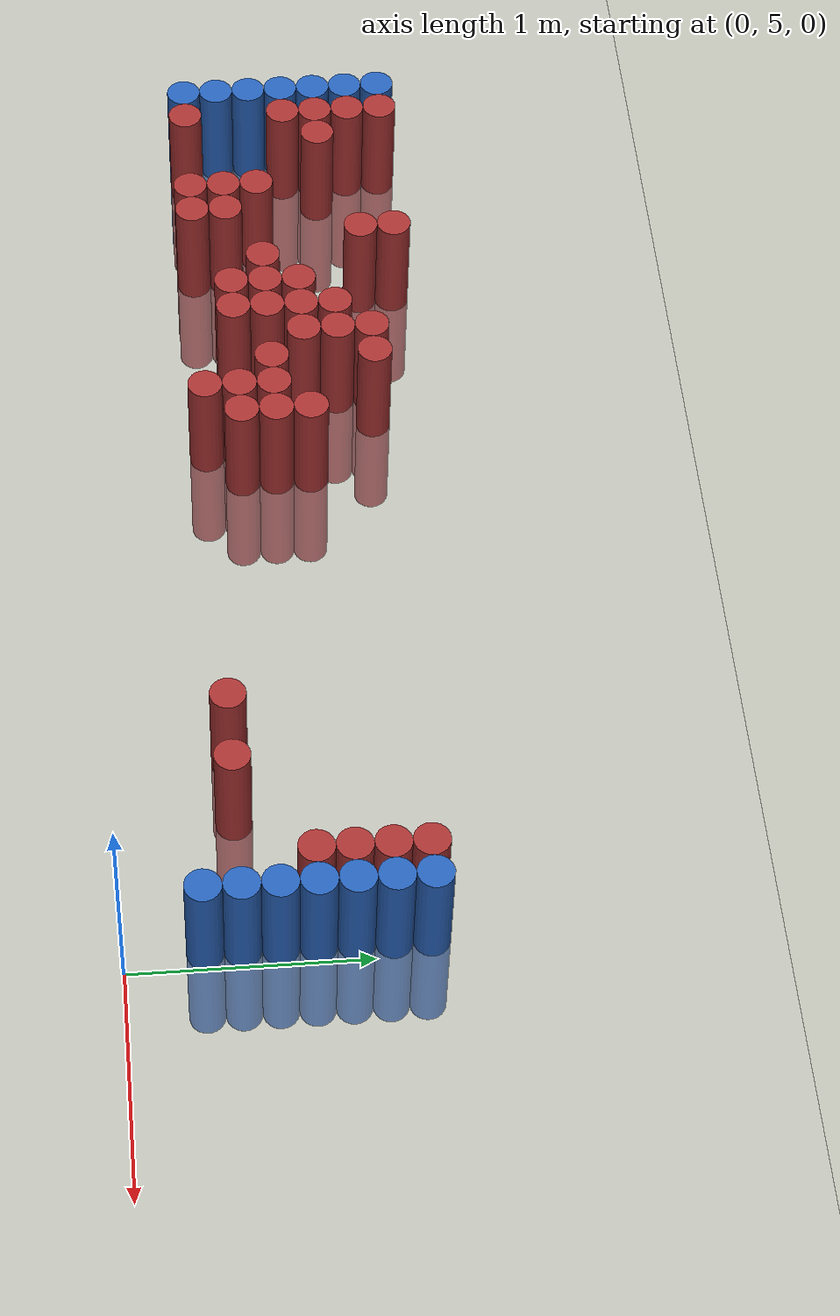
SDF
<sdf version="1.6">
 <world name="default">
  <model name="ground_plane">
   <static>1</static>
   <link name="link">
    <collision name="collision">
     <geometry><plane><normal>0 0 1</normal><size>100 100</size></plane></geometry>
     <surface><friction><ode><mu>100</mu><mu2>50</mu2></ode></friction></surface>
    </collision>
    <visual name="visual">
     <cast_shadows>0</cast_shadows>
     <geometry><plane><normal>0 0 1</normal><size>100 100</size></plane></geometry>
     <material>
      <script><uri>file://media/materials/scripts/gazebo.material</uri><name>Gazebo/Grey</name></script>
     </material>
    </visual>
   </link>
  </model>
  <model name="unit_cylinder_98">
   <static>1</static>
   <pose>-4.425000 5.475000 0.000000 0.000000 0.000000 0.000000</pose>
   <link name="link">
    <inertial>
     <mass>1</mass>
     <inertia><ixx>0.145833</ixx><ixy>0</ixy><ixz>0</ixz><iyy>0.145833</iyy><iyz>0</iyz><izz>0.125</izz></inertia>
    </inertial>
    <collision name="collision">
     <geometry><cylinder><radius>0.075000</radius><length>1</length></cylinder></geometry>
    </collision>
    <visual name="visual">
     <geometry><cylinder><radius>0.075000</radius><length>1</length></cylinder></geometry>
     <material>
      <ambient>0.152000 0.379000 0.720000 1</ambient>
      <diffuse>0.152000 0.379000 0.720000 1</diffuse>
     </material>
     <material>
      <script><name>Gazebo/Grey</name><uri>file://media/materials/scripts/gazebo.material</uri></script>
     </material>
    </visual>
   </link>
  </model>
  <model name="unit_cylinder_99">
   <static>1</static>
   <pose>-4.425000 5.625000 0.000000 0.000000 0.000000 0.000000</pose>
   <link name="link">
    <inertial>
     <mass>1</mass>
     <inertia><ixx>0.145833</ixx><ixy>0</ixy><ixz>0</ixz><iyy>0.145833</iyy><iyz>0</iyz><izz>0.125</izz></inertia>
    </inertial>
    <collision name="collision">
     <geometry><cylinder><radius>0.075000</radius><length>1</length></cylinder></geometry>
    </collision>
    <visual name="visual">
     <geometry><cylinder><radius>0.075000</radius><length>1</length></cylinder></geometry>
     <material>
      <ambient>0.152000 0.379000 0.720000 1</ambient>
      <diffuse>0.152000 0.379000 0.720000 1</diffuse>
     </material>
     <material>
      <script><name>Gazebo/Grey</name><uri>file://media/materials/scripts/gazebo.material</uri></script>
     </material>
    </visual>
   </link>
  </model>
  <model name="unit_cylinder_100">
   <static>1</static>
   <pose>-4.425000 5.775000 0.000000 0.000000 0.000000 0.000000</pose>
   <link name="link">
    <inertial>
     <mass>1</mass>
     <inertia><ixx>0.145833</ixx><ixy>0</ixy><ixz>0</ixz><iyy>0.145833</iyy><iyz>0</iyz><izz>0.125</izz></inertia>
    </inertial>
    <collision name="collision">
     <geometry><cylinder><radius>0.075000</radius><length>1</length></cylinder></geometry>
    </collision>
    <visual name="visual">
     <geometry><cylinder><radius>0.075000</radius><length>1</length></cylinder></geometry>
     <material>
      <ambient>0.152000 0.379000 0.720000 1</ambient>
      <diffuse>0.152000 0.379000 0.720000 1</diffuse>
     </material>
     <material>
      <script><name>Gazebo/Grey</name><uri>file://media/materials/scripts/gazebo.material</uri></script>
     </material>
    </visual>
   </link>
  </model>
  <model name="unit_cylinder_101">
   <static>1</static>
   <pose>-4.425000 5.925000 0.000000 0.000000 0.000000 0.000000</pose>
   <link name="link">
    <inertial>
     <mass>1</mass>
     <inertia><ixx>0.145833</ixx><ixy>0</ixy><ixz>0</ixz><iyy>0.145833</iyy><iyz>0</iyz><izz>0.125</izz></inertia>
    </inertial>
    <collision name="collision">
     <geometry><cylinder><radius>0.075000</radius><length>1</length></cylinder></geometry>
    </collision>
    <visual name="visual">
     <geometry><cylinder><radius>0.075000</radius><length>1</length></cylinder></geometry>
     <material>
      <ambient>0.152000 0.379000 0.720000 1</ambient>
      <diffuse>0.152000 0.379000 0.720000 1</diffuse>
     </material>
     <material>
      <script><name>Gazebo/Grey</name><uri>file://media/materials/scripts/gazebo.material</uri></script>
     </material>
    </visual>
   </link>
  </model>
  <model name="unit_cylinder_102">
   <static>1</static>
   <pose>-4.425000 6.075000 0.000000 0.000000 0.000000 0.000000</pose>
   <link name="link">
    <inertial>
     <mass>1</mass>
     <inertia><ixx>0.145833</ixx><ixy>0</ixy><ixz>0</ixz><iyy>0.145833</iyy><iyz>0</iyz><izz>0.125</izz></inertia>
    </inertial>
    <collision name="collision">
     <geometry><cylinder><radius>0.075000</radius><length>1</length></cylinder></geometry>
    </collision>
    <visual name="visual">
     <geometry><cylinder><radius>0.075000</radius><length>1</length></cylinder></geometry>
     <material>
      <ambient>0.152000 0.379000 0.720000 1</ambient>
      <diffuse>0.152000 0.379000 0.720000 1</diffuse>
     </material>
     <material>
      <script><name>Gazebo/Grey</name><uri>file://media/materials/scripts/gazebo.material</uri></script>
     </material>
    </visual>
   </link>
  </model>
  <model name="unit_cylinder_103">
   <static>1</static>
   <pose>-4.425000 6.225000 0.000000 0.000000 0.000000 0.000000</pose>
   <link name="link">
    <inertial>
     <mass>1</mass>
     <inertia><ixx>0.145833</ixx><ixy>0</ixy><ixz>0</ixz><iyy>0.145833</iyy><iyz>0</iyz><izz>0.125</izz></inertia>
    </inertial>
    <collision name="collision">
     <geometry><cylinder><radius>0.075000</radius><length>1</length></cylinder></geometry>
    </collision>
    <visual name="visual">
     <geometry><cylinder><radius>0.075000</radius><length>1</length></cylinder></geometry>
     <material>
      <ambient>0.152000 0.379000 0.720000 1</ambient>
      <diffuse>0.152000 0.379000 0.720000 1</diffuse>
     </material>
     <material>
      <script><name>Gazebo/Grey</name><uri>file://media/materials/scripts/gazebo.material</uri></script>
     </material>
    </visual>
   </link>
  </model>
  <model name="unit_cylinder_104">
   <static>1</static>
   <pose>-4.425000 6.375000 0.000000 0.000000 0.000000 0.000000</pose>
   <link name="link">
    <inertial>
     <mass>1</mass>
     <inertia><ixx>0.145833</ixx><ixy>0</ixy><ixz>0</ixz><iyy>0.145833</iyy><iyz>0</iyz><izz>0.125</izz></inertia>
    </inertial>
    <collision name="collision">
     <geometry><cylinder><radius>0.075000</radius><length>1</length></cylinder></geometry>
    </collision>
    <visual name="visual">
     <geometry><cylinder><radius>0.075000</radius><length>1</length></cylinder></geometry>
     <material>
      <ambient>0.152000 0.379000 0.720000 1</ambient>
      <diffuse>0.152000 0.379000 0.720000 1</diffuse>
     </material>
     <material>
      <script><name>Gazebo/Grey</name><uri>file://media/materials/scripts/gazebo.material</uri></script>
     </material>
    </visual>
   </link>
  </model>
  <model name="unit_cylinder_127">
   <static>1</static>
   <pose>-4.275000 5.475000 0.000000 0.000000 0.000000 0.000000</pose>
   <link name="link">
    <inertial>
     <mass>1</mass>
     <inertia><ixx>0.145833</ixx><ixy>0</ixy><ixz>0</ixz><iyy>0.145833</iyy><iyz>0</iyz><izz>0.125</izz></inertia>
    </inertial>
    <collision name="collision">
     <geometry><cylinder><radius>0.075000</radius><length>1</length></cylinder></geometry>
    </collision>
    <visual name="visual">
     <geometry><cylinder><radius>0.075000</radius><length>1</length></cylinder></geometry>
     <material>
      <ambient>0.648000 0.192000 0.192000 1</ambient>
      <diffuse>0.648000 0.192000 0.192000 1</diffuse>
     </material>
     <material>
      <script><name>Gazebo/Grey</name><uri>file://media/materials/scripts/gazebo.material</uri></script>
     </material>
    </visual>
   </link>
  </model>
  <model name="unit_cylinder_128">
   <static>1</static>
   <pose>-4.275000 5.925000 0.000000 0.000000 0.000000 0.000000</pose>
   <link name="link">
    <inertial>
     <mass>1</mass>
     <inertia><ixx>0.145833</ixx><ixy>0</ixy><ixz>0</ixz><iyy>0.145833</iyy><iyz>0</iyz><izz>0.125</izz></inertia>
    </inertial>
    <collision name="collision">
     <geometry><cylinder><radius>0.075000</radius><length>1</length></cylinder></geometry>
    </collision>
    <visual name="visual">
     <geometry><cylinder><radius>0.075000</radius><length>1</length></cylinder></geometry>
     <material>
      <ambient>0.648000 0.192000 0.192000 1</ambient>
      <diffuse>0.648000 0.192000 0.192000 1</diffuse>
     </material>
     <material>
      <script><name>Gazebo/Grey</name><uri>file://media/materials/scripts/gazebo.material</uri></script>
     </material>
    </visual>
   </link>
  </model>
  <model name="unit_cylinder_129">
   <static>1</static>
   <pose>-4.275000 6.075000 0.000000 0.000000 0.000000 0.000000</pose>
   <link name="link">
    <inertial>
     <mass>1</mass>
     <inertia><ixx>0.145833</ixx><ixy>0</ixy><ixz>0</ixz><iyy>0.145833</iyy><iyz>0</iyz><izz>0.125</izz></inertia>
    </inertial>
    <collision name="collision">
     <geometry><cylinder><radius>0.075000</radius><length>1</length></cylinder></geometry>
    </collision>
    <visual name="visual">
     <geometry><cylinder><radius>0.075000</radius><length>1</length></cylinder></geometry>
     <material>
      <ambient>0.648000 0.192000 0.192000 1</ambient>
      <diffuse>0.648000 0.192000 0.192000 1</diffuse>
     </material>
     <material>
      <script><name>Gazebo/Grey</name><uri>file://media/materials/scripts/gazebo.material</uri></script>
     </material>
    </visual>
   </link>
  </model>
  <model name="unit_cylinder_130">
   <static>1</static>
   <pose>-4.275000 6.225000 0.000000 0.000000 0.000000 0.000000</pose>
   <link name="link">
    <inertial>
     <mass>1</mass>
     <inertia><ixx>0.145833</ixx><ixy>0</ixy><ixz>0</ixz><iyy>0.145833</iyy><iyz>0</iyz><izz>0.125</izz></inertia>
    </inertial>
    <collision name="collision">
     <geometry><cylinder><radius>0.075000</radius><length>1</length></cylinder></geometry>
    </collision>
    <visual name="visual">
     <geometry><cylinder><radius>0.075000</radius><length>1</length></cylinder></geometry>
     <material>
      <ambient>0.648000 0.192000 0.192000 1</ambient>
      <diffuse>0.648000 0.192000 0.192000 1</diffuse>
     </material>
     <material>
      <script><name>Gazebo/Grey</name><uri>file://media/materials/scripts/gazebo.material</uri></script>
     </material>
    </visual>
   </link>
  </model>
  <model name="unit_cylinder_131">
   <static>1</static>
   <pose>-4.275000 6.375000 0.000000 0.000000 0.000000 0.000000</pose>
   <link name="link">
    <inertial>
     <mass>1</mass>
     <inertia><ixx>0.145833</ixx><ixy>0</ixy><ixz>0</ixz><iyy>0.145833</iyy><iyz>0</iyz><izz>0.125</izz></inertia>
    </inertial>
    <collision name="collision">
     <geometry><cylinder><radius>0.075000</radius><length>1</length></cylinder></geometry>
    </collision>
    <visual name="visual">
     <geometry><cylinder><radius>0.075000</radius><length>1</length></cylinder></geometry>
     <material>
      <ambient>0.648000 0.192000 0.192000 1</ambient>
      <diffuse>0.648000 0.192000 0.192000 1</diffuse>
     </material>
     <material>
      <script><name>Gazebo/Grey</name><uri>file://media/materials/scripts/gazebo.material</uri></script>
     </material>
    </visual>
   </link>
  </model>
  <model name="unit_cylinder_142">
   <static>1</static>
   <pose>-4.125000 6.075000 0.000000 0.000000 0.000000 0.000000</pose>
   <link name="link">
    <inertial>
     <mass>1</mass>
     <inertia><ixx>0.145833</ixx><ixy>0</ixy><ixz>0</ixz><iyy>0.145833</iyy><iyz>0</iyz><izz>0.125</izz></inertia>
    </inertial>
    <collision name="collision">
     <geometry><cylinder><radius>0.075000</radius><length>1</length></cylinder></geometry>
    </collision>
    <visual name="visual">
     <geometry><cylinder><radius>0.075000</radius><length>1</length></cylinder></geometry>
     <material>
      <ambient>0.648000 0.192000 0.192000 1</ambient>
      <diffuse>0.648000 0.192000 0.192000 1</diffuse>
     </material>
     <material>
      <script><name>Gazebo/Grey</name><uri>file://media/materials/scripts/gazebo.material</uri></script>
     </material>
    </visual>
   </link>
  </model>
  <model name="unit_cylinder_146">
   <static>1</static>
   <pose>-3.825000 5.475000 0.000000 0.000000 0.000000 0.000000</pose>
   <link name="link">
    <inertial>
     <mass>1</mass>
     <inertia><ixx>0.145833</ixx><ixy>0</ixy><ixz>0</ixz><iyy>0.145833</iyy><iyz>0</iyz><izz>0.125</izz></inertia>
    </inertial>
    <collision name="collision">
     <geometry><cylinder><radius>0.075000</radius><length>1</length></cylinder></geometry>
    </collision>
    <visual name="visual">
     <geometry><cylinder><radius>0.075000</radius><length>1</length></cylinder></geometry>
     <material>
      <ambient>0.648000 0.192000 0.192000 1</ambient>
      <diffuse>0.648000 0.192000 0.192000 1</diffuse>
     </material>
     <material>
      <script><name>Gazebo/Grey</name><uri>file://media/materials/scripts/gazebo.material</uri></script>
     </material>
    </visual>
   </link>
  </model>
  <model name="unit_cylinder_147">
   <static>1</static>
   <pose>-3.825000 5.625000 0.000000 0.000000 0.000000 0.000000</pose>
   <link name="link">
    <inertial>
     <mass>1</mass>
     <inertia><ixx>0.145833</ixx><ixy>0</ixy><ixz>0</ixz><iyy>0.145833</iyy><iyz>0</iyz><izz>0.125</izz></inertia>
    </inertial>
    <collision name="collision">
     <geometry><cylinder><radius>0.075000</radius><length>1</length></cylinder></geometry>
    </collision>
    <visual name="visual">
     <geometry><cylinder><radius>0.075000</radius><length>1</length></cylinder></geometry>
     <material>
      <ambient>0.648000 0.192000 0.192000 1</ambient>
      <diffuse>0.648000 0.192000 0.192000 1</diffuse>
     </material>
     <material>
      <script><name>Gazebo/Grey</name><uri>file://media/materials/scripts/gazebo.material</uri></script>
     </material>
    </visual>
   </link>
  </model>
  <model name="unit_cylinder_148">
   <static>1</static>
   <pose>-3.825000 5.775000 0.000000 0.000000 0.000000 0.000000</pose>
   <link name="link">
    <inertial>
     <mass>1</mass>
     <inertia><ixx>0.145833</ixx><ixy>0</ixy><ixz>0</ixz><iyy>0.145833</iyy><iyz>0</iyz><izz>0.125</izz></inertia>
    </inertial>
    <collision name="collision">
     <geometry><cylinder><radius>0.075000</radius><length>1</length></cylinder></geometry>
    </collision>
    <visual name="visual">
     <geometry><cylinder><radius>0.075000</radius><length>1</length></cylinder></geometry>
     <material>
      <ambient>0.648000 0.192000 0.192000 1</ambient>
      <diffuse>0.648000 0.192000 0.192000 1</diffuse>
     </material>
     <material>
      <script><name>Gazebo/Grey</name><uri>file://media/materials/scripts/gazebo.material</uri></script>
     </material>
    </visual>
   </link>
  </model>
  <model name="unit_cylinder_150">
   <static>1</static>
   <pose>-3.675000 5.475000 0.000000 0.000000 0.000000 0.000000</pose>
   <link name="link">
    <inertial>
     <mass>1</mass>
     <inertia><ixx>0.145833</ixx><ixy>0</ixy><ixz>0</ixz><iyy>0.145833</iyy><iyz>0</iyz><izz>0.125</izz></inertia>
    </inertial>
    <collision name="collision">
     <geometry><cylinder><radius>0.075000</radius><length>1</length></cylinder></geometry>
    </collision>
    <visual name="visual">
     <geometry><cylinder><radius>0.075000</radius><length>1</length></cylinder></geometry>
     <material>
      <ambient>0.648000 0.192000 0.192000 1</ambient>
      <diffuse>0.648000 0.192000 0.192000 1</diffuse>
     </material>
     <material>
      <script><name>Gazebo/Grey</name><uri>file://media/materials/scripts/gazebo.material</uri></script>
     </material>
    </visual>
   </link>
  </model>
  <model name="unit_cylinder_151">
   <static>1</static>
   <pose>-3.675000 5.625000 0.000000 0.000000 0.000000 0.000000</pose>
   <link name="link">
    <inertial>
     <mass>1</mass>
     <inertia><ixx>0.145833</ixx><ixy>0</ixy><ixz>0</ixz><iyy>0.145833</iyy><iyz>0</iyz><izz>0.125</izz></inertia>
    </inertial>
    <collision name="collision">
     <geometry><cylinder><radius>0.075000</radius><length>1</length></cylinder></geometry>
    </collision>
    <visual name="visual">
     <geometry><cylinder><radius>0.075000</radius><length>1</length></cylinder></geometry>
     <material>
      <ambient>0.648000 0.192000 0.192000 1</ambient>
      <diffuse>0.648000 0.192000 0.192000 1</diffuse>
     </material>
     <material>
      <script><name>Gazebo/Grey</name><uri>file://media/materials/scripts/gazebo.material</uri></script>
     </material>
    </visual>
   </link>
  </model>
  <model name="unit_cylinder_157">
   <static>1</static>
   <pose>-3.525000 6.225000 0.000000 0.000000 0.000000 0.000000</pose>
   <link name="link">
    <inertial>
     <mass>1</mass>
     <inertia><ixx>0.145833</ixx><ixy>0</ixy><ixz>0</ixz><iyy>0.145833</iyy><iyz>0</iyz><izz>0.125</izz></inertia>
    </inertial>
    <collision name="collision">
     <geometry><cylinder><radius>0.075000</radius><length>1</length></cylinder></geometry>
    </collision>
    <visual name="visual">
     <geometry><cylinder><radius>0.075000</radius><length>1</length></cylinder></geometry>
     <material>
      <ambient>0.648000 0.192000 0.192000 1</ambient>
      <diffuse>0.648000 0.192000 0.192000 1</diffuse>
     </material>
     <material>
      <script><name>Gazebo/Grey</name><uri>file://media/materials/scripts/gazebo.material</uri></script>
     </material>
    </visual>
   </link>
  </model>
  <model name="unit_cylinder_158">
   <static>1</static>
   <pose>-3.525000 6.375000 0.000000 0.000000 0.000000 0.000000</pose>
   <link name="link">
    <inertial>
     <mass>1</mass>
     <inertia><ixx>0.145833</ixx><ixy>0</ixy><ixz>0</ixz><iyy>0.145833</iyy><iyz>0</iyz><izz>0.125</izz></inertia>
    </inertial>
    <collision name="collision">
     <geometry><cylinder><radius>0.075000</radius><length>1</length></cylinder></geometry>
    </collision>
    <visual name="visual">
     <geometry><cylinder><radius>0.075000</radius><length>1</length></cylinder></geometry>
     <material>
      <ambient>0.648000 0.192000 0.192000 1</ambient>
      <diffuse>0.648000 0.192000 0.192000 1</diffuse>
     </material>
     <material>
      <script><name>Gazebo/Grey</name><uri>file://media/materials/scripts/gazebo.material</uri></script>
     </material>
    </visual>
   </link>
  </model>
  <model name="unit_cylinder_166">
   <static>1</static>
   <pose>-3.375000 5.775000 0.000000 0.000000 0.000000 0.000000</pose>
   <link name="link">
    <inertial>
     <mass>1</mass>
     <inertia><ixx>0.145833</ixx><ixy>0</ixy><ixz>0</ixz><iyy>0.145833</iyy><iyz>0</iyz><izz>0.125</izz></inertia>
    </inertial>
    <collision name="collision">
     <geometry><cylinder><radius>0.075000</radius><length>1</length></cylinder></geometry>
    </collision>
    <visual name="visual">
     <geometry><cylinder><radius>0.075000</radius><length>1</length></cylinder></geometry>
     <material>
      <ambient>0.648000 0.192000 0.192000 1</ambient>
      <diffuse>0.648000 0.192000 0.192000 1</diffuse>
     </material>
     <material>
      <script><name>Gazebo/Grey</name><uri>file://media/materials/scripts/gazebo.material</uri></script>
     </material>
    </visual>
   </link>
  </model>
  <model name="unit_cylinder_171">
   <static>1</static>
   <pose>-3.225000 5.625000 0.000000 0.000000 0.000000 0.000000</pose>
   <link name="link">
    <inertial>
     <mass>1</mass>
     <inertia><ixx>0.145833</ixx><ixy>0</ixy><ixz>0</ixz><iyy>0.145833</iyy><iyz>0</iyz><izz>0.125</izz></inertia>
    </inertial>
    <collision name="collision">
     <geometry><cylinder><radius>0.075000</radius><length>1</length></cylinder></geometry>
    </collision>
    <visual name="visual">
     <geometry><cylinder><radius>0.075000</radius><length>1</length></cylinder></geometry>
     <material>
      <ambient>0.648000 0.192000 0.192000 1</ambient>
      <diffuse>0.648000 0.192000 0.192000 1</diffuse>
     </material>
     <material>
      <script><name>Gazebo/Grey</name><uri>file://media/materials/scripts/gazebo.material</uri></script>
     </material>
    </visual>
   </link>
  </model>
  <model name="unit_cylinder_172">
   <static>1</static>
   <pose>-3.225000 5.775000 0.000000 0.000000 0.000000 0.000000</pose>
   <link name="link">
    <inertial>
     <mass>1</mass>
     <inertia><ixx>0.145833</ixx><ixy>0</ixy><ixz>0</ixz><iyy>0.145833</iyy><iyz>0</iyz><izz>0.125</izz></inertia>
    </inertial>
    <collision name="collision">
     <geometry><cylinder><radius>0.075000</radius><length>1</length></cylinder></geometry>
    </collision>
    <visual name="visual">
     <geometry><cylinder><radius>0.075000</radius><length>1</length></cylinder></geometry>
     <material>
      <ambient>0.648000 0.192000 0.192000 1</ambient>
      <diffuse>0.648000 0.192000 0.192000 1</diffuse>
     </material>
     <material>
      <script><name>Gazebo/Grey</name><uri>file://media/materials/scripts/gazebo.material</uri></script>
     </material>
    </visual>
   </link>
  </model>
  <model name="unit_cylinder_173">
   <static>1</static>
   <pose>-3.225000 5.925000 0.000000 0.000000 0.000000 0.000000</pose>
   <link name="link">
    <inertial>
     <mass>1</mass>
     <inertia><ixx>0.145833</ixx><ixy>0</ixy><ixz>0</ixz><iyy>0.145833</iyy><iyz>0</iyz><izz>0.125</izz></inertia>
    </inertial>
    <collision name="collision">
     <geometry><cylinder><radius>0.075000</radius><length>1</length></cylinder></geometry>
    </collision>
    <visual name="visual">
     <geometry><cylinder><radius>0.075000</radius><length>1</length></cylinder></geometry>
     <material>
      <ambient>0.648000 0.192000 0.192000 1</ambient>
      <diffuse>0.648000 0.192000 0.192000 1</diffuse>
     </material>
     <material>
      <script><name>Gazebo/Grey</name><uri>file://media/materials/scripts/gazebo.material</uri></script>
     </material>
    </visual>
   </link>
  </model>
  <model name="unit_cylinder_175">
   <static>1</static>
   <pose>-3.075000 5.625000 0.000000 0.000000 0.000000 0.000000</pose>
   <link name="link">
    <inertial>
     <mass>1</mass>
     <inertia><ixx>0.145833</ixx><ixy>0</ixy><ixz>0</ixz><iyy>0.145833</iyy><iyz>0</iyz><izz>0.125</izz></inertia>
    </inertial>
    <collision name="collision">
     <geometry><cylinder><radius>0.075000</radius><length>1</length></cylinder></geometry>
    </collision>
    <visual name="visual">
     <geometry><cylinder><radius>0.075000</radius><length>1</length></cylinder></geometry>
     <material>
      <ambient>0.648000 0.192000 0.192000 1</ambient>
      <diffuse>0.648000 0.192000 0.192000 1</diffuse>
     </material>
     <material>
      <script><name>Gazebo/Grey</name><uri>file://media/materials/scripts/gazebo.material</uri></script>
     </material>
    </visual>
   </link>
  </model>
  <model name="unit_cylinder_176">
   <static>1</static>
   <pose>-3.075000 5.775000 0.000000 0.000000 0.000000 0.000000</pose>
   <link name="link">
    <inertial>
     <mass>1</mass>
     <inertia><ixx>0.145833</ixx><ixy>0</ixy><ixz>0</ixz><iyy>0.145833</iyy><iyz>0</iyz><izz>0.125</izz></inertia>
    </inertial>
    <collision name="collision">
     <geometry><cylinder><radius>0.075000</radius><length>1</length></cylinder></geometry>
    </collision>
    <visual name="visual">
     <geometry><cylinder><radius>0.075000</radius><length>1</length></cylinder></geometry>
     <material>
      <ambient>0.648000 0.192000 0.192000 1</ambient>
      <diffuse>0.648000 0.192000 0.192000 1</diffuse>
     </material>
     <material>
      <script><name>Gazebo/Grey</name><uri>file://media/materials/scripts/gazebo.material</uri></script>
     </material>
    </visual>
   </link>
  </model>
  <model name="unit_cylinder_177">
   <static>1</static>
   <pose>-3.075000 5.925000 0.000000 0.000000 0.000000 0.000000</pose>
   <link name="link">
    <inertial>
     <mass>1</mass>
     <inertia><ixx>0.145833</ixx><ixy>0</ixy><ixz>0</ixz><iyy>0.145833</iyy><iyz>0</iyz><izz>0.125</izz></inertia>
    </inertial>
    <collision name="collision">
     <geometry><cylinder><radius>0.075000</radius><length>1</length></cylinder></geometry>
    </collision>
    <visual name="visual">
     <geometry><cylinder><radius>0.075000</radius><length>1</length></cylinder></geometry>
     <material>
      <ambient>0.648000 0.192000 0.192000 1</ambient>
      <diffuse>0.648000 0.192000 0.192000 1</diffuse>
     </material>
     <material>
      <script><name>Gazebo/Grey</name><uri>file://media/materials/scripts/gazebo.material</uri></script>
     </material>
    </visual>
   </link>
  </model>
  <model name="unit_cylinder_178">
   <static>1</static>
   <pose>-3.075000 6.075000 0.000000 0.000000 0.000000 0.000000</pose>
   <link name="link">
    <inertial>
     <mass>1</mass>
     <inertia><ixx>0.145833</ixx><ixy>0</ixy><ixz>0</ixz><iyy>0.145833</iyy><iyz>0</iyz><izz>0.125</izz></inertia>
    </inertial>
    <collision name="collision">
     <geometry><cylinder><radius>0.075000</radius><length>1</length></cylinder></geometry>
    </collision>
    <visual name="visual">
     <geometry><cylinder><radius>0.075000</radius><length>1</length></cylinder></geometry>
     <material>
      <ambient>0.648000 0.192000 0.192000 1</ambient>
      <diffuse>0.648000 0.192000 0.192000 1</diffuse>
     </material>
     <material>
      <script><name>Gazebo/Grey</name><uri>file://media/materials/scripts/gazebo.material</uri></script>
     </material>
    </visual>
   </link>
  </model>
  <model name="unit_cylinder_182">
   <static>1</static>
   <pose>-2.925000 5.925000 0.000000 0.000000 0.000000 0.000000</pose>
   <link name="link">
    <inertial>
     <mass>1</mass>
     <inertia><ixx>0.145833</ixx><ixy>0</ixy><ixz>0</ixz><iyy>0.145833</iyy><iyz>0</iyz><izz>0.125</izz></inertia>
    </inertial>
    <collision name="collision">
     <geometry><cylinder><radius>0.075000</radius><length>1</length></cylinder></geometry>
    </collision>
    <visual name="visual">
     <geometry><cylinder><radius>0.075000</radius><length>1</length></cylinder></geometry>
     <material>
      <ambient>0.648000 0.192000 0.192000 1</ambient>
      <diffuse>0.648000 0.192000 0.192000 1</diffuse>
     </material>
     <material>
      <script><name>Gazebo/Grey</name><uri>file://media/materials/scripts/gazebo.material</uri></script>
     </material>
    </visual>
   </link>
  </model>
  <model name="unit_cylinder_183">
   <static>1</static>
   <pose>-2.925000 6.075000 0.000000 0.000000 0.000000 0.000000</pose>
   <link name="link">
    <inertial>
     <mass>1</mass>
     <inertia><ixx>0.145833</ixx><ixy>0</ixy><ixz>0</ixz><iyy>0.145833</iyy><iyz>0</iyz><izz>0.125</izz></inertia>
    </inertial>
    <collision name="collision">
     <geometry><cylinder><radius>0.075000</radius><length>1</length></cylinder></geometry>
    </collision>
    <visual name="visual">
     <geometry><cylinder><radius>0.075000</radius><length>1</length></cylinder></geometry>
     <material>
      <ambient>0.648000 0.192000 0.192000 1</ambient>
      <diffuse>0.648000 0.192000 0.192000 1</diffuse>
     </material>
     <material>
      <script><name>Gazebo/Grey</name><uri>file://media/materials/scripts/gazebo.material</uri></script>
     </material>
    </visual>
   </link>
  </model>
  <model name="unit_cylinder_184">
   <static>1</static>
   <pose>-2.925000 6.225000 0.000000 0.000000 0.000000 0.000000</pose>
   <link name="link">
    <inertial>
     <mass>1</mass>
     <inertia><ixx>0.145833</ixx><ixy>0</ixy><ixz>0</ixz><iyy>0.145833</iyy><iyz>0</iyz><izz>0.125</izz></inertia>
    </inertial>
    <collision name="collision">
     <geometry><cylinder><radius>0.075000</radius><length>1</length></cylinder></geometry>
    </collision>
    <visual name="visual">
     <geometry><cylinder><radius>0.075000</radius><length>1</length></cylinder></geometry>
     <material>
      <ambient>0.648000 0.192000 0.192000 1</ambient>
      <diffuse>0.648000 0.192000 0.192000 1</diffuse>
     </material>
     <material>
      <script><name>Gazebo/Grey</name><uri>file://media/materials/scripts/gazebo.material</uri></script>
     </material>
    </visual>
   </link>
  </model>
  <model name="unit_cylinder_185">
   <static>1</static>
   <pose>-2.775000 5.775000 0.000000 0.000000 0.000000 0.000000</pose>
   <link name="link">
    <inertial>
     <mass>1</mass>
     <inertia><ixx>0.145833</ixx><ixy>0</ixy><ixz>0</ixz><iyy>0.145833</iyy><iyz>0</iyz><izz>0.125</izz></inertia>
    </inertial>
    <collision name="collision">
     <geometry><cylinder><radius>0.075000</radius><length>1</length></cylinder></geometry>
    </collision>
    <visual name="visual">
     <geometry><cylinder><radius>0.075000</radius><length>1</length></cylinder></geometry>
     <material>
      <ambient>0.648000 0.192000 0.192000 1</ambient>
      <diffuse>0.648000 0.192000 0.192000 1</diffuse>
     </material>
     <material>
      <script><name>Gazebo/Grey</name><uri>file://media/materials/scripts/gazebo.material</uri></script>
     </material>
    </visual>
   </link>
  </model>
  <model name="unit_cylinder_186">
   <static>1</static>
   <pose>-2.775000 6.225000 0.000000 0.000000 0.000000 0.000000</pose>
   <link name="link">
    <inertial>
     <mass>1</mass>
     <inertia><ixx>0.145833</ixx><ixy>0</ixy><ixz>0</ixz><iyy>0.145833</iyy><iyz>0</iyz><izz>0.125</izz></inertia>
    </inertial>
    <collision name="collision">
     <geometry><cylinder><radius>0.075000</radius><length>1</length></cylinder></geometry>
    </collision>
    <visual name="visual">
     <geometry><cylinder><radius>0.075000</radius><length>1</length></cylinder></geometry>
     <material>
      <ambient>0.648000 0.192000 0.192000 1</ambient>
      <diffuse>0.648000 0.192000 0.192000 1</diffuse>
     </material>
     <material>
      <script><name>Gazebo/Grey</name><uri>file://media/materials/scripts/gazebo.material</uri></script>
     </material>
    </visual>
   </link>
  </model>
  <model name="unit_cylinder_188">
   <static>1</static>
   <pose>-2.625000 5.475000 0.000000 0.000000 0.000000 0.000000</pose>
   <link name="link">
    <inertial>
     <mass>1</mass>
     <inertia><ixx>0.145833</ixx><ixy>0</ixy><ixz>0</ixz><iyy>0.145833</iyy><iyz>0</iyz><izz>0.125</izz></inertia>
    </inertial>
    <collision name="collision">
     <geometry><cylinder><radius>0.075000</radius><length>1</length></cylinder></geometry>
    </collision>
    <visual name="visual">
     <geometry><cylinder><radius>0.075000</radius><length>1</length></cylinder></geometry>
     <material>
      <ambient>0.648000 0.192000 0.192000 1</ambient>
      <diffuse>0.648000 0.192000 0.192000 1</diffuse>
     </material>
     <material>
      <script><name>Gazebo/Grey</name><uri>file://media/materials/scripts/gazebo.material</uri></script>
     </material>
    </visual>
   </link>
  </model>
  <model name="unit_cylinder_189">
   <static>1</static>
   <pose>-2.625000 5.625000 0.000000 0.000000 0.000000 0.000000</pose>
   <link name="link">
    <inertial>
     <mass>1</mass>
     <inertia><ixx>0.145833</ixx><ixy>0</ixy><ixz>0</ixz><iyy>0.145833</iyy><iyz>0</iyz><izz>0.125</izz></inertia>
    </inertial>
    <collision name="collision">
     <geometry><cylinder><radius>0.075000</radius><length>1</length></cylinder></geometry>
    </collision>
    <visual name="visual">
     <geometry><cylinder><radius>0.075000</radius><length>1</length></cylinder></geometry>
     <material>
      <ambient>0.648000 0.192000 0.192000 1</ambient>
      <diffuse>0.648000 0.192000 0.192000 1</diffuse>
     </material>
     <material>
      <script><name>Gazebo/Grey</name><uri>file://media/materials/scripts/gazebo.material</uri></script>
     </material>
    </visual>
   </link>
  </model>
  <model name="unit_cylinder_190">
   <static>1</static>
   <pose>-2.625000 5.775000 0.000000 0.000000 0.000000 0.000000</pose>
   <link name="link">
    <inertial>
     <mass>1</mass>
     <inertia><ixx>0.145833</ixx><ixy>0</ixy><ixz>0</ixz><iyy>0.145833</iyy><iyz>0</iyz><izz>0.125</izz></inertia>
    </inertial>
    <collision name="collision">
     <geometry><cylinder><radius>0.075000</radius><length>1</length></cylinder></geometry>
    </collision>
    <visual name="visual">
     <geometry><cylinder><radius>0.075000</radius><length>1</length></cylinder></geometry>
     <material>
      <ambient>0.648000 0.192000 0.192000 1</ambient>
      <diffuse>0.648000 0.192000 0.192000 1</diffuse>
     </material>
     <material>
      <script><name>Gazebo/Grey</name><uri>file://media/materials/scripts/gazebo.material</uri></script>
     </material>
    </visual>
   </link>
  </model>
  <model name="unit_cylinder_195">
   <static>1</static>
   <pose>-2.475000 5.625000 0.000000 0.000000 0.000000 0.000000</pose>
   <link name="link">
    <inertial>
     <mass>1</mass>
     <inertia><ixx>0.145833</ixx><ixy>0</ixy><ixz>0</ixz><iyy>0.145833</iyy><iyz>0</iyz><izz>0.125</izz></inertia>
    </inertial>
    <collision name="collision">
     <geometry><cylinder><radius>0.075000</radius><length>1</length></cylinder></geometry>
    </collision>
    <visual name="visual">
     <geometry><cylinder><radius>0.075000</radius><length>1</length></cylinder></geometry>
     <material>
      <ambient>0.648000 0.192000 0.192000 1</ambient>
      <diffuse>0.648000 0.192000 0.192000 1</diffuse>
     </material>
     <material>
      <script><name>Gazebo/Grey</name><uri>file://media/materials/scripts/gazebo.material</uri></script>
     </material>
    </visual>
   </link>
  </model>
  <model name="unit_cylinder_196">
   <static>1</static>
   <pose>-2.475000 5.775000 0.000000 0.000000 0.000000 0.000000</pose>
   <link name="link">
    <inertial>
     <mass>1</mass>
     <inertia><ixx>0.145833</ixx><ixy>0</ixy><ixz>0</ixz><iyy>0.145833</iyy><iyz>0</iyz><izz>0.125</izz></inertia>
    </inertial>
    <collision name="collision">
     <geometry><cylinder><radius>0.075000</radius><length>1</length></cylinder></geometry>
    </collision>
    <visual name="visual">
     <geometry><cylinder><radius>0.075000</radius><length>1</length></cylinder></geometry>
     <material>
      <ambient>0.648000 0.192000 0.192000 1</ambient>
      <diffuse>0.648000 0.192000 0.192000 1</diffuse>
     </material>
     <material>
      <script><name>Gazebo/Grey</name><uri>file://media/materials/scripts/gazebo.material</uri></script>
     </material>
    </visual>
   </link>
  </model>
  <model name="unit_cylinder_197">
   <static>1</static>
   <pose>-2.475000 5.925000 0.000000 0.000000 0.000000 0.000000</pose>
   <link name="link">
    <inertial>
     <mass>1</mass>
     <inertia><ixx>0.145833</ixx><ixy>0</ixy><ixz>0</ixz><iyy>0.145833</iyy><iyz>0</iyz><izz>0.125</izz></inertia>
    </inertial>
    <collision name="collision">
     <geometry><cylinder><radius>0.075000</radius><length>1</length></cylinder></geometry>
    </collision>
    <visual name="visual">
     <geometry><cylinder><radius>0.075000</radius><length>1</length></cylinder></geometry>
     <material>
      <ambient>0.648000 0.192000 0.192000 1</ambient>
      <diffuse>0.648000 0.192000 0.192000 1</diffuse>
     </material>
     <material>
      <script><name>Gazebo/Grey</name><uri>file://media/materials/scripts/gazebo.material</uri></script>
     </material>
    </visual>
   </link>
  </model>
  <model name="unit_cylinder_218">
   <static>1</static>
   <pose>-0.975000 5.475000 0.000000 0.000000 0.000000 0.000000</pose>
   <link name="link">
    <inertial>
     <mass>1</mass>
     <inertia><ixx>0.145833</ixx><ixy>0</ixy><ixz>0</ixz><iyy>0.145833</iyy><iyz>0</iyz><izz>0.125</izz></inertia>
    </inertial>
    <collision name="collision">
     <geometry><cylinder><radius>0.075000</radius><length>1</length></cylinder></geometry>
    </collision>
    <visual name="visual">
     <geometry><cylinder><radius>0.075000</radius><length>1</length></cylinder></geometry>
     <material>
      <ambient>0.648000 0.192000 0.192000 1</ambient>
      <diffuse>0.648000 0.192000 0.192000 1</diffuse>
     </material>
     <material>
      <script><name>Gazebo/Grey</name><uri>file://media/materials/scripts/gazebo.material</uri></script>
     </material>
    </visual>
   </link>
  </model>
  <model name="unit_cylinder_233">
   <static>1</static>
   <pose>-0.675000 5.475000 0.000000 0.000000 0.000000 0.000000</pose>
   <link name="link">
    <inertial>
     <mass>1</mass>
     <inertia><ixx>0.145833</ixx><ixy>0</ixy><ixz>0</ixz><iyy>0.145833</iyy><iyz>0</iyz><izz>0.125</izz></inertia>
    </inertial>
    <collision name="collision">
     <geometry><cylinder><radius>0.075000</radius><length>1</length></cylinder></geometry>
    </collision>
    <visual name="visual">
     <geometry><cylinder><radius>0.075000</radius><length>1</length></cylinder></geometry>
     <material>
      <ambient>0.648000 0.192000 0.192000 1</ambient>
      <diffuse>0.648000 0.192000 0.192000 1</diffuse>
     </material>
     <material>
      <script><name>Gazebo/Grey</name><uri>file://media/materials/scripts/gazebo.material</uri></script>
     </material>
    </visual>
   </link>
  </model>
  <model name="unit_cylinder_260">
   <static>1</static>
   <pose>-0.225000 5.775000 0.000000 0.000000 0.000000 0.000000</pose>
   <link name="link">
    <inertial>
     <mass>1</mass>
     <inertia><ixx>0.145833</ixx><ixy>0</ixy><ixz>0</ixz><iyy>0.145833</iyy><iyz>0</iyz><izz>0.125</izz></inertia>
    </inertial>
    <collision name="collision">
     <geometry><cylinder><radius>0.075000</radius><length>1</length></cylinder></geometry>
    </collision>
    <visual name="visual">
     <geometry><cylinder><radius>0.075000</radius><length>1</length></cylinder></geometry>
     <material>
      <ambient>0.648000 0.192000 0.192000 1</ambient>
      <diffuse>0.648000 0.192000 0.192000 1</diffuse>
     </material>
     <material>
      <script><name>Gazebo/Grey</name><uri>file://media/materials/scripts/gazebo.material</uri></script>
     </material>
    </visual>
   </link>
  </model>
  <model name="unit_cylinder_261">
   <static>1</static>
   <pose>-0.225000 5.925000 0.000000 0.000000 0.000000 0.000000</pose>
   <link name="link">
    <inertial>
     <mass>1</mass>
     <inertia><ixx>0.145833</ixx><ixy>0</ixy><ixz>0</ixz><iyy>0.145833</iyy><iyz>0</iyz><izz>0.125</izz></inertia>
    </inertial>
    <collision name="collision">
     <geometry><cylinder><radius>0.075000</radius><length>1</length></cylinder></geometry>
    </collision>
    <visual name="visual">
     <geometry><cylinder><radius>0.075000</radius><length>1</length></cylinder></geometry>
     <material>
      <ambient>0.648000 0.192000 0.192000 1</ambient>
      <diffuse>0.648000 0.192000 0.192000 1</diffuse>
     </material>
     <material>
      <script><name>Gazebo/Grey</name><uri>file://media/materials/scripts/gazebo.material</uri></script>
     </material>
    </visual>
   </link>
  </model>
  <model name="unit_cylinder_262">
   <static>1</static>
   <pose>-0.225000 6.075000 0.000000 0.000000 0.000000 0.000000</pose>
   <link name="link">
    <inertial>
     <mass>1</mass>
     <inertia><ixx>0.145833</ixx><ixy>0</ixy><ixz>0</ixz><iyy>0.145833</iyy><iyz>0</iyz><izz>0.125</izz></inertia>
    </inertial>
    <collision name="collision">
     <geometry><cylinder><radius>0.075000</radius><length>1</length></cylinder></geometry>
    </collision>
    <visual name="visual">
     <geometry><cylinder><radius>0.075000</radius><length>1</length></cylinder></geometry>
     <material>
      <ambient>0.648000 0.192000 0.192000 1</ambient>
      <diffuse>0.648000 0.192000 0.192000 1</diffuse>
     </material>
     <material>
      <script><name>Gazebo/Grey</name><uri>file://media/materials/scripts/gazebo.material</uri></script>
     </material>
    </visual>
   </link>
  </model>
  <model name="unit_cylinder_263">
   <static>1</static>
   <pose>-0.225000 6.225000 0.000000 0.000000 0.000000 0.000000</pose>
   <link name="link">
    <inertial>
     <mass>1</mass>
     <inertia><ixx>0.145833</ixx><ixy>0</ixy><ixz>0</ixz><iyy>0.145833</iyy><iyz>0</iyz><izz>0.125</izz></inertia>
    </inertial>
    <collision name="collision">
     <geometry><cylinder><radius>0.075000</radius><length>1</length></cylinder></geometry>
    </collision>
    <visual name="visual">
     <geometry><cylinder><radius>0.075000</radius><length>1</length></cylinder></geometry>
     <material>
      <ambient>0.648000 0.192000 0.192000 1</ambient>
      <diffuse>0.648000 0.192000 0.192000 1</diffuse>
     </material>
     <material>
      <script><name>Gazebo/Grey</name><uri>file://media/materials/scripts/gazebo.material</uri></script>
     </material>
    </visual>
   </link>
  </model>
  <model name="unit_cylinder_281">
   <static>1</static>
   <pose>-0.075000 5.325000 0.000000 0.000000 0.000000 0.000000</pose>
   <link name="link">
    <inertial>
     <mass>1</mass>
     <inertia><ixx>0.145833</ixx><ixy>0</ixy><ixz>0</ixz><iyy>0.145833</iyy><iyz>0</iyz><izz>0.125</izz></inertia>
    </inertial>
    <collision name="collision">
     <geometry><cylinder><radius>0.075000</radius><length>1</length></cylinder></geometry>
    </collision>
    <visual name="visual">
     <geometry><cylinder><radius>0.075000</radius><length>1</length></cylinder></geometry>
     <material>
      <ambient>0.152000 0.379000 0.720000 1</ambient>
      <diffuse>0.152000 0.379000 0.720000 1</diffuse>
     </material>
     <material>
      <script><name>Gazebo/Grey</name><uri>file://media/materials/scripts/gazebo.material</uri></script>
     </material>
    </visual>
   </link>
  </model>
  <model name="unit_cylinder_282">
   <static>1</static>
   <pose>-0.075000 5.475000 0.000000 0.000000 0.000000 0.000000</pose>
   <link name="link">
    <inertial>
     <mass>1</mass>
     <inertia><ixx>0.145833</ixx><ixy>0</ixy><ixz>0</ixz><iyy>0.145833</iyy><iyz>0</iyz><izz>0.125</izz></inertia>
    </inertial>
    <collision name="collision">
     <geometry><cylinder><radius>0.075000</radius><length>1</length></cylinder></geometry>
    </collision>
    <visual name="visual">
     <geometry><cylinder><radius>0.075000</radius><length>1</length></cylinder></geometry>
     <material>
      <ambient>0.152000 0.379000 0.720000 1</ambient>
      <diffuse>0.152000 0.379000 0.720000 1</diffuse>
     </material>
     <material>
      <script><name>Gazebo/Grey</name><uri>file://media/materials/scripts/gazebo.material</uri></script>
     </material>
    </visual>
   </link>
  </model>
  <model name="unit_cylinder_283">
   <static>1</static>
   <pose>-0.075000 5.625000 0.000000 0.000000 0.000000 0.000000</pose>
   <link name="link">
    <inertial>
     <mass>1</mass>
     <inertia><ixx>0.145833</ixx><ixy>0</ixy><ixz>0</ixz><iyy>0.145833</iyy><iyz>0</iyz><izz>0.125</izz></inertia>
    </inertial>
    <collision name="collision">
     <geometry><cylinder><radius>0.075000</radius><length>1</length></cylinder></geometry>
    </collision>
    <visual name="visual">
     <geometry><cylinder><radius>0.075000</radius><length>1</length></cylinder></geometry>
     <material>
      <ambient>0.152000 0.379000 0.720000 1</ambient>
      <diffuse>0.152000 0.379000 0.720000 1</diffuse>
     </material>
     <material>
      <script><name>Gazebo/Grey</name><uri>file://media/materials/scripts/gazebo.material</uri></script>
     </material>
    </visual>
   </link>
  </model>
  <model name="unit_cylinder_284">
   <static>1</static>
   <pose>-0.075000 5.775000 0.000000 0.000000 0.000000 0.000000</pose>
   <link name="link">
    <inertial>
     <mass>1</mass>
     <inertia><ixx>0.145833</ixx><ixy>0</ixy><ixz>0</ixz><iyy>0.145833</iyy><iyz>0</iyz><izz>0.125</izz></inertia>
    </inertial>
    <collision name="collision">
     <geometry><cylinder><radius>0.075000</radius><length>1</length></cylinder></geometry>
    </collision>
    <visual name="visual">
     <geometry><cylinder><radius>0.075000</radius><length>1</length></cylinder></geometry>
     <material>
      <ambient>0.152000 0.379000 0.720000 1</ambient>
      <diffuse>0.152000 0.379000 0.720000 1</diffuse>
     </material>
     <material>
      <script><name>Gazebo/Grey</name><uri>file://media/materials/scripts/gazebo.material</uri></script>
     </material>
    </visual>
   </link>
  </model>
  <model name="unit_cylinder_285">
   <static>1</static>
   <pose>-0.075000 5.925000 0.000000 0.000000 0.000000 0.000000</pose>
   <link name="link">
    <inertial>
     <mass>1</mass>
     <inertia><ixx>0.145833</ixx><ixy>0</ixy><ixz>0</ixz><iyy>0.145833</iyy><iyz>0</iyz><izz>0.125</izz></inertia>
    </inertial>
    <collision name="collision">
     <geometry><cylinder><radius>0.075000</radius><length>1</length></cylinder></geometry>
    </collision>
    <visual name="visual">
     <geometry><cylinder><radius>0.075000</radius><length>1</length></cylinder></geometry>
     <material>
      <ambient>0.152000 0.379000 0.720000 1</ambient>
      <diffuse>0.152000 0.379000 0.720000 1</diffuse>
     </material>
     <material>
      <script><name>Gazebo/Grey</name><uri>file://media/materials/scripts/gazebo.material</uri></script>
     </material>
    </visual>
   </link>
  </model>
  <model name="unit_cylinder_286">
   <static>1</static>
   <pose>-0.075000 6.075000 0.000000 0.000000 0.000000 0.000000</pose>
   <link name="link">
    <inertial>
     <mass>1</mass>
     <inertia><ixx>0.145833</ixx><ixy>0</ixy><ixz>0</ixz><iyy>0.145833</iyy><iyz>0</iyz><izz>0.125</izz></inertia>
    </inertial>
    <collision name="collision">
     <geometry><cylinder><radius>0.075000</radius><length>1</length></cylinder></geometry>
    </collision>
    <visual name="visual">
     <geometry><cylinder><radius>0.075000</radius><length>1</length></cylinder></geometry>
     <material>
      <ambient>0.152000 0.379000 0.720000 1</ambient>
      <diffuse>0.152000 0.379000 0.720000 1</diffuse>
     </material>
     <material>
      <script><name>Gazebo/Grey</name><uri>file://media/materials/scripts/gazebo.material</uri></script>
     </material>
    </visual>
   </link>
  </model>
  <model name="unit_cylinder_287">
   <static>1</static>
   <pose>-0.075000 6.225000 0.000000 0.000000 0.000000 0.000000</pose>
   <link name="link">
    <inertial>
     <mass>1</mass>
     <inertia><ixx>0.145833</ixx><ixy>0</ixy><ixz>0</ixz><iyy>0.145833</iyy><iyz>0</iyz><izz>0.125</izz></inertia>
    </inertial>
    <collision name="collision">
     <geometry><cylinder><radius>0.075000</radius><length>1</length></cylinder></geometry>
    </collision>
    <visual name="visual">
     <geometry><cylinder><radius>0.075000</radius><length>1</length></cylinder></geometry>
     <material>
      <ambient>0.152000 0.379000 0.720000 1</ambient>
      <diffuse>0.152000 0.379000 0.720000 1</diffuse>
     </material>
     <material>
      <script><name>Gazebo/Grey</name><uri>file://media/materials/scripts/gazebo.material</uri></script>
     </material>
    </visual>
   </link>
  </model>
 </world>
</sdf>
